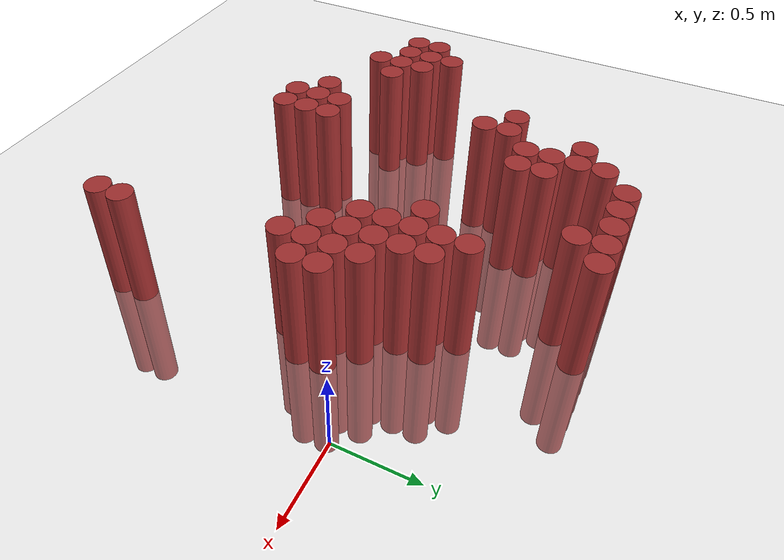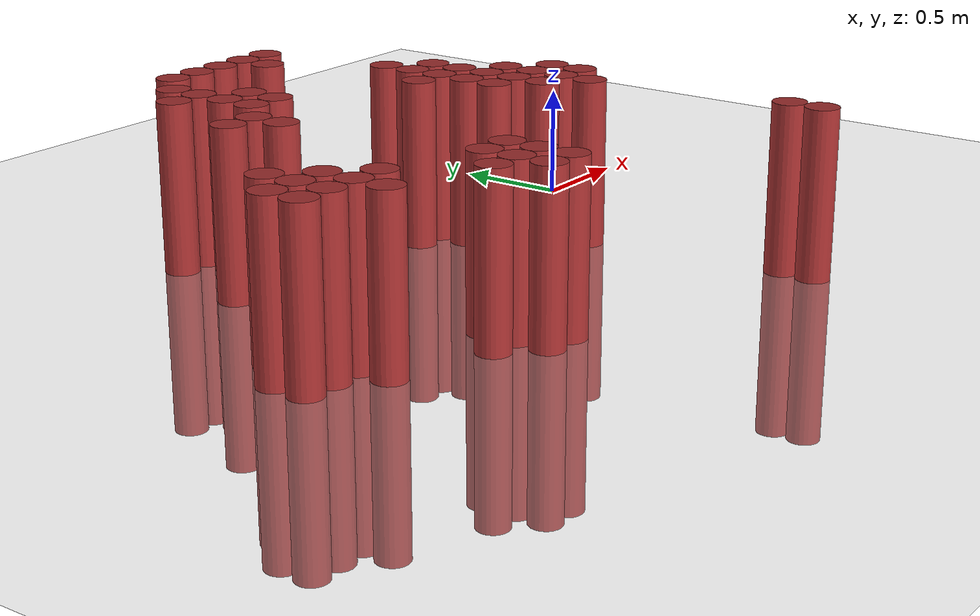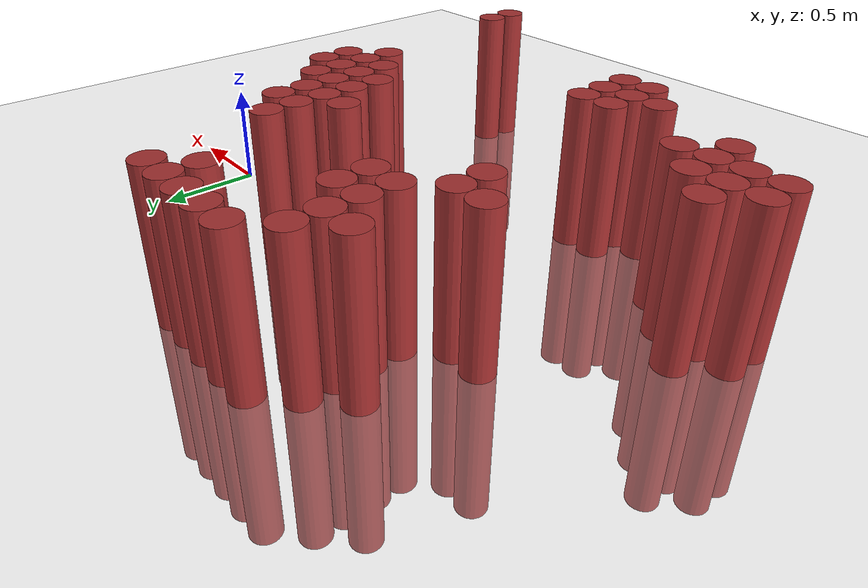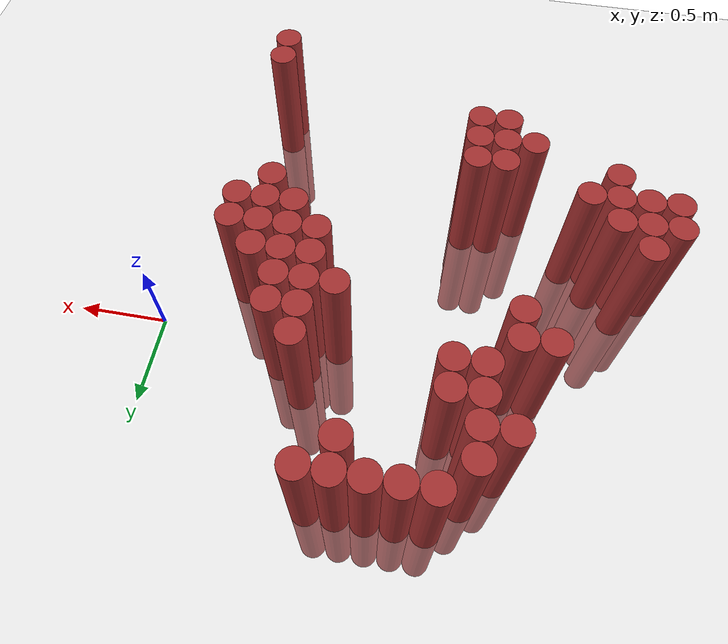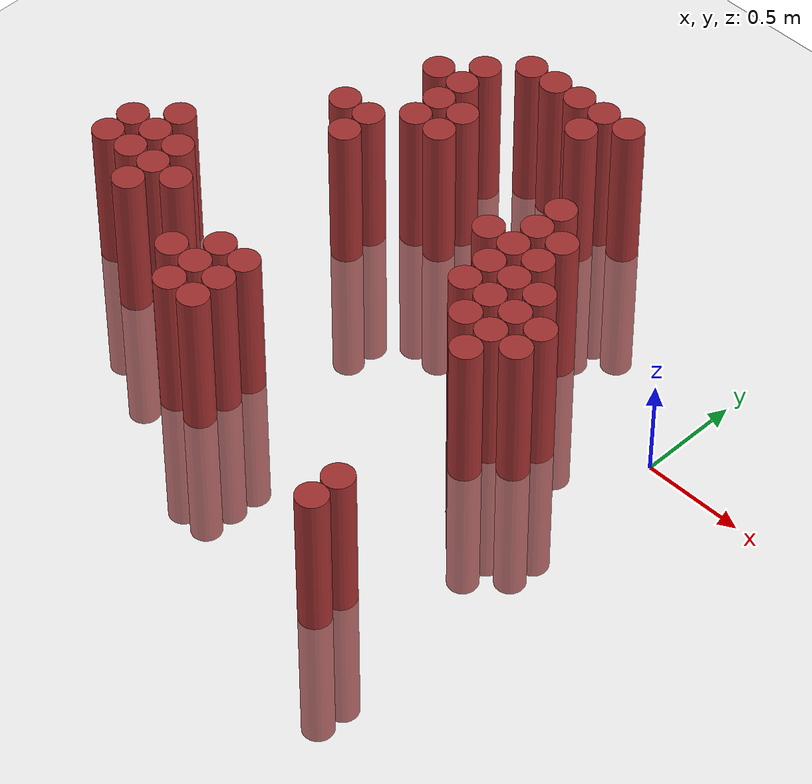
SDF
<sdf version="1.6">
 <world name="default">
  <model name="ground_plane">
   <static>1</static>
   <link name="link">
    <collision name="collision">
     <geometry><plane><normal>0 0 1</normal><size>100 100</size></plane></geometry>
     <surface><friction><ode><mu>100</mu><mu2>50</mu2></ode></friction></surface>
    </collision>
    <visual name="visual">
     <cast_shadows>0</cast_shadows>
     <geometry><plane><normal>0 0 1</normal><size>100 100</size></plane></geometry>
     <material>
      <script><uri>file://media/materials/scripts/gazebo.material</uri><name>Gazebo/Grey</name></script>
     </material>
    </visual>
   </link>
  </model>
  <model name="unit_cylinder_311">
   <static>1</static>
   <pose>-2.675000 -0.725000 0.000000 0.000000 0.000000 0.000000</pose>
   <link name="link">
    <inertial>
     <mass>1</mass>
     <inertia><ixx>0.145833</ixx><ixy>0</ixy><ixz>0</ixz><iyy>0.145833</iyy><iyz>0</iyz><izz>0.125</izz></inertia>
    </inertial>
    <collision name="collision">
     <geometry><cylinder><radius>0.075000</radius><length>1.5</length></cylinder></geometry>
    </collision>
    <visual name="visual">
     <geometry><cylinder><radius>0.075000</radius><length>1.5</length></cylinder></geometry>
     <material>
      <ambient>0.648000 0.192000 0.192000 1</ambient>
      <diffuse>0.648000 0.192000 0.192000 1</diffuse>
     </material>
     <material>
      <script><name>Gazebo/Grey</name><uri>file://media/materials/scripts/gazebo.material</uri></script>
     </material>
    </visual>
   </link>
  </model>
  <model name="unit_cylinder_312">
   <static>1</static>
   <pose>-2.675000 -0.575000 0.000000 0.000000 0.000000 0.000000</pose>
   <link name="link">
    <inertial>
     <mass>1</mass>
     <inertia><ixx>0.145833</ixx><ixy>0</ixy><ixz>0</ixz><iyy>0.145833</iyy><iyz>0</iyz><izz>0.125</izz></inertia>
    </inertial>
    <collision name="collision">
     <geometry><cylinder><radius>0.075000</radius><length>1.5</length></cylinder></geometry>
    </collision>
    <visual name="visual">
     <geometry><cylinder><radius>0.075000</radius><length>1.5</length></cylinder></geometry>
     <material>
      <ambient>0.648000 0.192000 0.192000 1</ambient>
      <diffuse>0.648000 0.192000 0.192000 1</diffuse>
     </material>
     <material>
      <script><name>Gazebo/Grey</name><uri>file://media/materials/scripts/gazebo.material</uri></script>
     </material>
    </visual>
   </link>
  </model>
  <model name="unit_cylinder_316">
   <static>1</static>
   <pose>-2.525000 -0.725000 0.000000 0.000000 0.000000 0.000000</pose>
   <link name="link">
    <inertial>
     <mass>1</mass>
     <inertia><ixx>0.145833</ixx><ixy>0</ixy><ixz>0</ixz><iyy>0.145833</iyy><iyz>0</iyz><izz>0.125</izz></inertia>
    </inertial>
    <collision name="collision">
     <geometry><cylinder><radius>0.075000</radius><length>1.5</length></cylinder></geometry>
    </collision>
    <visual name="visual">
     <geometry><cylinder><radius>0.075000</radius><length>1.5</length></cylinder></geometry>
     <material>
      <ambient>0.648000 0.192000 0.192000 1</ambient>
      <diffuse>0.648000 0.192000 0.192000 1</diffuse>
     </material>
     <material>
      <script><name>Gazebo/Grey</name><uri>file://media/materials/scripts/gazebo.material</uri></script>
     </material>
    </visual>
   </link>
  </model>
  <model name="unit_cylinder_317">
   <static>1</static>
   <pose>-2.525000 -0.575000 0.000000 0.000000 0.000000 0.000000</pose>
   <link name="link">
    <inertial>
     <mass>1</mass>
     <inertia><ixx>0.145833</ixx><ixy>0</ixy><ixz>0</ixz><iyy>0.145833</iyy><iyz>0</iyz><izz>0.125</izz></inertia>
    </inertial>
    <collision name="collision">
     <geometry><cylinder><radius>0.075000</radius><length>1.5</length></cylinder></geometry>
    </collision>
    <visual name="visual">
     <geometry><cylinder><radius>0.075000</radius><length>1.5</length></cylinder></geometry>
     <material>
      <ambient>0.648000 0.192000 0.192000 1</ambient>
      <diffuse>0.648000 0.192000 0.192000 1</diffuse>
     </material>
     <material>
      <script><name>Gazebo/Grey</name><uri>file://media/materials/scripts/gazebo.material</uri></script>
     </material>
    </visual>
   </link>
  </model>
  <model name="unit_cylinder_318">
   <static>1</static>
   <pose>-2.525000 -0.425000 0.000000 0.000000 0.000000 0.000000</pose>
   <link name="link">
    <inertial>
     <mass>1</mass>
     <inertia><ixx>0.145833</ixx><ixy>0</ixy><ixz>0</ixz><iyy>0.145833</iyy><iyz>0</iyz><izz>0.125</izz></inertia>
    </inertial>
    <collision name="collision">
     <geometry><cylinder><radius>0.075000</radius><length>1.5</length></cylinder></geometry>
    </collision>
    <visual name="visual">
     <geometry><cylinder><radius>0.075000</radius><length>1.5</length></cylinder></geometry>
     <material>
      <ambient>0.648000 0.192000 0.192000 1</ambient>
      <diffuse>0.648000 0.192000 0.192000 1</diffuse>
     </material>
     <material>
      <script><name>Gazebo/Grey</name><uri>file://media/materials/scripts/gazebo.material</uri></script>
     </material>
    </visual>
   </link>
  </model>
  <model name="unit_cylinder_322">
   <static>1</static>
   <pose>-2.375000 -0.875000 0.000000 0.000000 0.000000 0.000000</pose>
   <link name="link">
    <inertial>
     <mass>1</mass>
     <inertia><ixx>0.145833</ixx><ixy>0</ixy><ixz>0</ixz><iyy>0.145833</iyy><iyz>0</iyz><izz>0.125</izz></inertia>
    </inertial>
    <collision name="collision">
     <geometry><cylinder><radius>0.075000</radius><length>1.5</length></cylinder></geometry>
    </collision>
    <visual name="visual">
     <geometry><cylinder><radius>0.075000</radius><length>1.5</length></cylinder></geometry>
     <material>
      <ambient>0.648000 0.192000 0.192000 1</ambient>
      <diffuse>0.648000 0.192000 0.192000 1</diffuse>
     </material>
     <material>
      <script><name>Gazebo/Grey</name><uri>file://media/materials/scripts/gazebo.material</uri></script>
     </material>
    </visual>
   </link>
  </model>
  <model name="unit_cylinder_323">
   <static>1</static>
   <pose>-2.375000 -0.725000 0.000000 0.000000 0.000000 0.000000</pose>
   <link name="link">
    <inertial>
     <mass>1</mass>
     <inertia><ixx>0.145833</ixx><ixy>0</ixy><ixz>0</ixz><iyy>0.145833</iyy><iyz>0</iyz><izz>0.125</izz></inertia>
    </inertial>
    <collision name="collision">
     <geometry><cylinder><radius>0.075000</radius><length>1.5</length></cylinder></geometry>
    </collision>
    <visual name="visual">
     <geometry><cylinder><radius>0.075000</radius><length>1.5</length></cylinder></geometry>
     <material>
      <ambient>0.648000 0.192000 0.192000 1</ambient>
      <diffuse>0.648000 0.192000 0.192000 1</diffuse>
     </material>
     <material>
      <script><name>Gazebo/Grey</name><uri>file://media/materials/scripts/gazebo.material</uri></script>
     </material>
    </visual>
   </link>
  </model>
  <model name="unit_cylinder_324">
   <static>1</static>
   <pose>-2.375000 -0.575000 0.000000 0.000000 0.000000 0.000000</pose>
   <link name="link">
    <inertial>
     <mass>1</mass>
     <inertia><ixx>0.145833</ixx><ixy>0</ixy><ixz>0</ixz><iyy>0.145833</iyy><iyz>0</iyz><izz>0.125</izz></inertia>
    </inertial>
    <collision name="collision">
     <geometry><cylinder><radius>0.075000</radius><length>1.5</length></cylinder></geometry>
    </collision>
    <visual name="visual">
     <geometry><cylinder><radius>0.075000</radius><length>1.5</length></cylinder></geometry>
     <material>
      <ambient>0.648000 0.192000 0.192000 1</ambient>
      <diffuse>0.648000 0.192000 0.192000 1</diffuse>
     </material>
     <material>
      <script><name>Gazebo/Grey</name><uri>file://media/materials/scripts/gazebo.material</uri></script>
     </material>
    </visual>
   </link>
  </model>
  <model name="unit_cylinder_333">
   <static>1</static>
   <pose>-2.225000 -0.725000 0.000000 0.000000 0.000000 0.000000</pose>
   <link name="link">
    <inertial>
     <mass>1</mass>
     <inertia><ixx>0.145833</ixx><ixy>0</ixy><ixz>0</ixz><iyy>0.145833</iyy><iyz>0</iyz><izz>0.125</izz></inertia>
    </inertial>
    <collision name="collision">
     <geometry><cylinder><radius>0.075000</radius><length>1.5</length></cylinder></geometry>
    </collision>
    <visual name="visual">
     <geometry><cylinder><radius>0.075000</radius><length>1.5</length></cylinder></geometry>
     <material>
      <ambient>0.648000 0.192000 0.192000 1</ambient>
      <diffuse>0.648000 0.192000 0.192000 1</diffuse>
     </material>
     <material>
      <script><name>Gazebo/Grey</name><uri>file://media/materials/scripts/gazebo.material</uri></script>
     </material>
    </visual>
   </link>
  </model>
  <model name="unit_cylinder_341">
   <static>1</static>
   <pose>-2.075000 0.175000 0.000000 0.000000 0.000000 0.000000</pose>
   <link name="link">
    <inertial>
     <mass>1</mass>
     <inertia><ixx>0.145833</ixx><ixy>0</ixy><ixz>0</ixz><iyy>0.145833</iyy><iyz>0</iyz><izz>0.125</izz></inertia>
    </inertial>
    <collision name="collision">
     <geometry><cylinder><radius>0.075000</radius><length>1.5</length></cylinder></geometry>
    </collision>
    <visual name="visual">
     <geometry><cylinder><radius>0.075000</radius><length>1.5</length></cylinder></geometry>
     <material>
      <ambient>0.648000 0.192000 0.192000 1</ambient>
      <diffuse>0.648000 0.192000 0.192000 1</diffuse>
     </material>
     <material>
      <script><name>Gazebo/Grey</name><uri>file://media/materials/scripts/gazebo.material</uri></script>
     </material>
    </visual>
   </link>
  </model>
  <model name="unit_cylinder_346">
   <static>1</static>
   <pose>-1.925000 -1.025000 0.000000 0.000000 0.000000 0.000000</pose>
   <link name="link">
    <inertial>
     <mass>1</mass>
     <inertia><ixx>0.145833</ixx><ixy>0</ixy><ixz>0</ixz><iyy>0.145833</iyy><iyz>0</iyz><izz>0.125</izz></inertia>
    </inertial>
    <collision name="collision">
     <geometry><cylinder><radius>0.075000</radius><length>1.5</length></cylinder></geometry>
    </collision>
    <visual name="visual">
     <geometry><cylinder><radius>0.075000</radius><length>1.5</length></cylinder></geometry>
     <material>
      <ambient>0.648000 0.192000 0.192000 1</ambient>
      <diffuse>0.648000 0.192000 0.192000 1</diffuse>
     </material>
     <material>
      <script><name>Gazebo/Grey</name><uri>file://media/materials/scripts/gazebo.material</uri></script>
     </material>
    </visual>
   </link>
  </model>
  <model name="unit_cylinder_347">
   <static>1</static>
   <pose>-1.925000 0.025000 0.000000 0.000000 0.000000 0.000000</pose>
   <link name="link">
    <inertial>
     <mass>1</mass>
     <inertia><ixx>0.145833</ixx><ixy>0</ixy><ixz>0</ixz><iyy>0.145833</iyy><iyz>0</iyz><izz>0.125</izz></inertia>
    </inertial>
    <collision name="collision">
     <geometry><cylinder><radius>0.075000</radius><length>1.5</length></cylinder></geometry>
    </collision>
    <visual name="visual">
     <geometry><cylinder><radius>0.075000</radius><length>1.5</length></cylinder></geometry>
     <material>
      <ambient>0.648000 0.192000 0.192000 1</ambient>
      <diffuse>0.648000 0.192000 0.192000 1</diffuse>
     </material>
     <material>
      <script><name>Gazebo/Grey</name><uri>file://media/materials/scripts/gazebo.material</uri></script>
     </material>
    </visual>
   </link>
  </model>
  <model name="unit_cylinder_348">
   <static>1</static>
   <pose>-1.925000 0.175000 0.000000 0.000000 0.000000 0.000000</pose>
   <link name="link">
    <inertial>
     <mass>1</mass>
     <inertia><ixx>0.145833</ixx><ixy>0</ixy><ixz>0</ixz><iyy>0.145833</iyy><iyz>0</iyz><izz>0.125</izz></inertia>
    </inertial>
    <collision name="collision">
     <geometry><cylinder><radius>0.075000</radius><length>1.5</length></cylinder></geometry>
    </collision>
    <visual name="visual">
     <geometry><cylinder><radius>0.075000</radius><length>1.5</length></cylinder></geometry>
     <material>
      <ambient>0.648000 0.192000 0.192000 1</ambient>
      <diffuse>0.648000 0.192000 0.192000 1</diffuse>
     </material>
     <material>
      <script><name>Gazebo/Grey</name><uri>file://media/materials/scripts/gazebo.material</uri></script>
     </material>
    </visual>
   </link>
  </model>
  <model name="unit_cylinder_349">
   <static>1</static>
   <pose>-1.925000 0.625000 0.000000 0.000000 0.000000 0.000000</pose>
   <link name="link">
    <inertial>
     <mass>1</mass>
     <inertia><ixx>0.145833</ixx><ixy>0</ixy><ixz>0</ixz><iyy>0.145833</iyy><iyz>0</iyz><izz>0.125</izz></inertia>
    </inertial>
    <collision name="collision">
     <geometry><cylinder><radius>0.075000</radius><length>1.5</length></cylinder></geometry>
    </collision>
    <visual name="visual">
     <geometry><cylinder><radius>0.075000</radius><length>1.5</length></cylinder></geometry>
     <material>
      <ambient>0.648000 0.192000 0.192000 1</ambient>
      <diffuse>0.648000 0.192000 0.192000 1</diffuse>
     </material>
     <material>
      <script><name>Gazebo/Grey</name><uri>file://media/materials/scripts/gazebo.material</uri></script>
     </material>
    </visual>
   </link>
  </model>
  <model name="unit_cylinder_354">
   <static>1</static>
   <pose>-1.775000 -1.175000 0.000000 0.000000 0.000000 0.000000</pose>
   <link name="link">
    <inertial>
     <mass>1</mass>
     <inertia><ixx>0.145833</ixx><ixy>0</ixy><ixz>0</ixz><iyy>0.145833</iyy><iyz>0</iyz><izz>0.125</izz></inertia>
    </inertial>
    <collision name="collision">
     <geometry><cylinder><radius>0.075000</radius><length>1.5</length></cylinder></geometry>
    </collision>
    <visual name="visual">
     <geometry><cylinder><radius>0.075000</radius><length>1.5</length></cylinder></geometry>
     <material>
      <ambient>0.648000 0.192000 0.192000 1</ambient>
      <diffuse>0.648000 0.192000 0.192000 1</diffuse>
     </material>
     <material>
      <script><name>Gazebo/Grey</name><uri>file://media/materials/scripts/gazebo.material</uri></script>
     </material>
    </visual>
   </link>
  </model>
  <model name="unit_cylinder_355">
   <static>1</static>
   <pose>-1.775000 -1.025000 0.000000 0.000000 0.000000 0.000000</pose>
   <link name="link">
    <inertial>
     <mass>1</mass>
     <inertia><ixx>0.145833</ixx><ixy>0</ixy><ixz>0</ixz><iyy>0.145833</iyy><iyz>0</iyz><izz>0.125</izz></inertia>
    </inertial>
    <collision name="collision">
     <geometry><cylinder><radius>0.075000</radius><length>1.5</length></cylinder></geometry>
    </collision>
    <visual name="visual">
     <geometry><cylinder><radius>0.075000</radius><length>1.5</length></cylinder></geometry>
     <material>
      <ambient>0.648000 0.192000 0.192000 1</ambient>
      <diffuse>0.648000 0.192000 0.192000 1</diffuse>
     </material>
     <material>
      <script><name>Gazebo/Grey</name><uri>file://media/materials/scripts/gazebo.material</uri></script>
     </material>
    </visual>
   </link>
  </model>
  <model name="unit_cylinder_356">
   <static>1</static>
   <pose>-1.775000 -0.875000 0.000000 0.000000 0.000000 0.000000</pose>
   <link name="link">
    <inertial>
     <mass>1</mass>
     <inertia><ixx>0.145833</ixx><ixy>0</ixy><ixz>0</ixz><iyy>0.145833</iyy><iyz>0</iyz><izz>0.125</izz></inertia>
    </inertial>
    <collision name="collision">
     <geometry><cylinder><radius>0.075000</radius><length>1.5</length></cylinder></geometry>
    </collision>
    <visual name="visual">
     <geometry><cylinder><radius>0.075000</radius><length>1.5</length></cylinder></geometry>
     <material>
      <ambient>0.648000 0.192000 0.192000 1</ambient>
      <diffuse>0.648000 0.192000 0.192000 1</diffuse>
     </material>
     <material>
      <script><name>Gazebo/Grey</name><uri>file://media/materials/scripts/gazebo.material</uri></script>
     </material>
    </visual>
   </link>
  </model>
  <model name="unit_cylinder_357">
   <static>1</static>
   <pose>-1.775000 0.325000 0.000000 0.000000 0.000000 0.000000</pose>
   <link name="link">
    <inertial>
     <mass>1</mass>
     <inertia><ixx>0.145833</ixx><ixy>0</ixy><ixz>0</ixz><iyy>0.145833</iyy><iyz>0</iyz><izz>0.125</izz></inertia>
    </inertial>
    <collision name="collision">
     <geometry><cylinder><radius>0.075000</radius><length>1.5</length></cylinder></geometry>
    </collision>
    <visual name="visual">
     <geometry><cylinder><radius>0.075000</radius><length>1.5</length></cylinder></geometry>
     <material>
      <ambient>0.648000 0.192000 0.192000 1</ambient>
      <diffuse>0.648000 0.192000 0.192000 1</diffuse>
     </material>
     <material>
      <script><name>Gazebo/Grey</name><uri>file://media/materials/scripts/gazebo.material</uri></script>
     </material>
    </visual>
   </link>
  </model>
  <model name="unit_cylinder_358">
   <static>1</static>
   <pose>-1.775000 0.475000 0.000000 0.000000 0.000000 0.000000</pose>
   <link name="link">
    <inertial>
     <mass>1</mass>
     <inertia><ixx>0.145833</ixx><ixy>0</ixy><ixz>0</ixz><iyy>0.145833</iyy><iyz>0</iyz><izz>0.125</izz></inertia>
    </inertial>
    <collision name="collision">
     <geometry><cylinder><radius>0.075000</radius><length>1.5</length></cylinder></geometry>
    </collision>
    <visual name="visual">
     <geometry><cylinder><radius>0.075000</radius><length>1.5</length></cylinder></geometry>
     <material>
      <ambient>0.648000 0.192000 0.192000 1</ambient>
      <diffuse>0.648000 0.192000 0.192000 1</diffuse>
     </material>
     <material>
      <script><name>Gazebo/Grey</name><uri>file://media/materials/scripts/gazebo.material</uri></script>
     </material>
    </visual>
   </link>
  </model>
  <model name="unit_cylinder_359">
   <static>1</static>
   <pose>-1.775000 0.625000 0.000000 0.000000 0.000000 0.000000</pose>
   <link name="link">
    <inertial>
     <mass>1</mass>
     <inertia><ixx>0.145833</ixx><ixy>0</ixy><ixz>0</ixz><iyy>0.145833</iyy><iyz>0</iyz><izz>0.125</izz></inertia>
    </inertial>
    <collision name="collision">
     <geometry><cylinder><radius>0.075000</radius><length>1.5</length></cylinder></geometry>
    </collision>
    <visual name="visual">
     <geometry><cylinder><radius>0.075000</radius><length>1.5</length></cylinder></geometry>
     <material>
      <ambient>0.648000 0.192000 0.192000 1</ambient>
      <diffuse>0.648000 0.192000 0.192000 1</diffuse>
     </material>
     <material>
      <script><name>Gazebo/Grey</name><uri>file://media/materials/scripts/gazebo.material</uri></script>
     </material>
    </visual>
   </link>
  </model>
  <model name="unit_cylinder_360">
   <static>1</static>
   <pose>-1.775000 0.775000 0.000000 0.000000 0.000000 0.000000</pose>
   <link name="link">
    <inertial>
     <mass>1</mass>
     <inertia><ixx>0.145833</ixx><ixy>0</ixy><ixz>0</ixz><iyy>0.145833</iyy><iyz>0</iyz><izz>0.125</izz></inertia>
    </inertial>
    <collision name="collision">
     <geometry><cylinder><radius>0.075000</radius><length>1.5</length></cylinder></geometry>
    </collision>
    <visual name="visual">
     <geometry><cylinder><radius>0.075000</radius><length>1.5</length></cylinder></geometry>
     <material>
      <ambient>0.648000 0.192000 0.192000 1</ambient>
      <diffuse>0.648000 0.192000 0.192000 1</diffuse>
     </material>
     <material>
      <script><name>Gazebo/Grey</name><uri>file://media/materials/scripts/gazebo.material</uri></script>
     </material>
    </visual>
   </link>
  </model>
  <model name="unit_cylinder_367">
   <static>1</static>
   <pose>-1.625000 -1.175000 0.000000 0.000000 0.000000 0.000000</pose>
   <link name="link">
    <inertial>
     <mass>1</mass>
     <inertia><ixx>0.145833</ixx><ixy>0</ixy><ixz>0</ixz><iyy>0.145833</iyy><iyz>0</iyz><izz>0.125</izz></inertia>
    </inertial>
    <collision name="collision">
     <geometry><cylinder><radius>0.075000</radius><length>1.5</length></cylinder></geometry>
    </collision>
    <visual name="visual">
     <geometry><cylinder><radius>0.075000</radius><length>1.5</length></cylinder></geometry>
     <material>
      <ambient>0.648000 0.192000 0.192000 1</ambient>
      <diffuse>0.648000 0.192000 0.192000 1</diffuse>
     </material>
     <material>
      <script><name>Gazebo/Grey</name><uri>file://media/materials/scripts/gazebo.material</uri></script>
     </material>
    </visual>
   </link>
  </model>
  <model name="unit_cylinder_368">
   <static>1</static>
   <pose>-1.625000 -1.025000 0.000000 0.000000 0.000000 0.000000</pose>
   <link name="link">
    <inertial>
     <mass>1</mass>
     <inertia><ixx>0.145833</ixx><ixy>0</ixy><ixz>0</ixz><iyy>0.145833</iyy><iyz>0</iyz><izz>0.125</izz></inertia>
    </inertial>
    <collision name="collision">
     <geometry><cylinder><radius>0.075000</radius><length>1.5</length></cylinder></geometry>
    </collision>
    <visual name="visual">
     <geometry><cylinder><radius>0.075000</radius><length>1.5</length></cylinder></geometry>
     <material>
      <ambient>0.648000 0.192000 0.192000 1</ambient>
      <diffuse>0.648000 0.192000 0.192000 1</diffuse>
     </material>
     <material>
      <script><name>Gazebo/Grey</name><uri>file://media/materials/scripts/gazebo.material</uri></script>
     </material>
    </visual>
   </link>
  </model>
  <model name="unit_cylinder_369">
   <static>1</static>
   <pose>-1.625000 -0.875000 0.000000 0.000000 0.000000 0.000000</pose>
   <link name="link">
    <inertial>
     <mass>1</mass>
     <inertia><ixx>0.145833</ixx><ixy>0</ixy><ixz>0</ixz><iyy>0.145833</iyy><iyz>0</iyz><izz>0.125</izz></inertia>
    </inertial>
    <collision name="collision">
     <geometry><cylinder><radius>0.075000</radius><length>1.5</length></cylinder></geometry>
    </collision>
    <visual name="visual">
     <geometry><cylinder><radius>0.075000</radius><length>1.5</length></cylinder></geometry>
     <material>
      <ambient>0.648000 0.192000 0.192000 1</ambient>
      <diffuse>0.648000 0.192000 0.192000 1</diffuse>
     </material>
     <material>
      <script><name>Gazebo/Grey</name><uri>file://media/materials/scripts/gazebo.material</uri></script>
     </material>
    </visual>
   </link>
  </model>
  <model name="unit_cylinder_370">
   <static>1</static>
   <pose>-1.625000 0.325000 0.000000 0.000000 0.000000 0.000000</pose>
   <link name="link">
    <inertial>
     <mass>1</mass>
     <inertia><ixx>0.145833</ixx><ixy>0</ixy><ixz>0</ixz><iyy>0.145833</iyy><iyz>0</iyz><izz>0.125</izz></inertia>
    </inertial>
    <collision name="collision">
     <geometry><cylinder><radius>0.075000</radius><length>1.5</length></cylinder></geometry>
    </collision>
    <visual name="visual">
     <geometry><cylinder><radius>0.075000</radius><length>1.5</length></cylinder></geometry>
     <material>
      <ambient>0.648000 0.192000 0.192000 1</ambient>
      <diffuse>0.648000 0.192000 0.192000 1</diffuse>
     </material>
     <material>
      <script><name>Gazebo/Grey</name><uri>file://media/materials/scripts/gazebo.material</uri></script>
     </material>
    </visual>
   </link>
  </model>
  <model name="unit_cylinder_371">
   <static>1</static>
   <pose>-1.625000 0.475000 0.000000 0.000000 0.000000 0.000000</pose>
   <link name="link">
    <inertial>
     <mass>1</mass>
     <inertia><ixx>0.145833</ixx><ixy>0</ixy><ixz>0</ixz><iyy>0.145833</iyy><iyz>0</iyz><izz>0.125</izz></inertia>
    </inertial>
    <collision name="collision">
     <geometry><cylinder><radius>0.075000</radius><length>1.5</length></cylinder></geometry>
    </collision>
    <visual name="visual">
     <geometry><cylinder><radius>0.075000</radius><length>1.5</length></cylinder></geometry>
     <material>
      <ambient>0.648000 0.192000 0.192000 1</ambient>
      <diffuse>0.648000 0.192000 0.192000 1</diffuse>
     </material>
     <material>
      <script><name>Gazebo/Grey</name><uri>file://media/materials/scripts/gazebo.material</uri></script>
     </material>
    </visual>
   </link>
  </model>
  <model name="unit_cylinder_372">
   <static>1</static>
   <pose>-1.625000 0.925000 0.000000 0.000000 0.000000 0.000000</pose>
   <link name="link">
    <inertial>
     <mass>1</mass>
     <inertia><ixx>0.145833</ixx><ixy>0</ixy><ixz>0</ixz><iyy>0.145833</iyy><iyz>0</iyz><izz>0.125</izz></inertia>
    </inertial>
    <collision name="collision">
     <geometry><cylinder><radius>0.075000</radius><length>1.5</length></cylinder></geometry>
    </collision>
    <visual name="visual">
     <geometry><cylinder><radius>0.075000</radius><length>1.5</length></cylinder></geometry>
     <material>
      <ambient>0.648000 0.192000 0.192000 1</ambient>
      <diffuse>0.648000 0.192000 0.192000 1</diffuse>
     </material>
     <material>
      <script><name>Gazebo/Grey</name><uri>file://media/materials/scripts/gazebo.material</uri></script>
     </material>
    </visual>
   </link>
  </model>
  <model name="unit_cylinder_378">
   <static>1</static>
   <pose>-1.475000 0.925000 0.000000 0.000000 0.000000 0.000000</pose>
   <link name="link">
    <inertial>
     <mass>1</mass>
     <inertia><ixx>0.145833</ixx><ixy>0</ixy><ixz>0</ixz><iyy>0.145833</iyy><iyz>0</iyz><izz>0.125</izz></inertia>
    </inertial>
    <collision name="collision">
     <geometry><cylinder><radius>0.075000</radius><length>1.5</length></cylinder></geometry>
    </collision>
    <visual name="visual">
     <geometry><cylinder><radius>0.075000</radius><length>1.5</length></cylinder></geometry>
     <material>
      <ambient>0.648000 0.192000 0.192000 1</ambient>
      <diffuse>0.648000 0.192000 0.192000 1</diffuse>
     </material>
     <material>
      <script><name>Gazebo/Grey</name><uri>file://media/materials/scripts/gazebo.material</uri></script>
     </material>
    </visual>
   </link>
  </model>
  <model name="unit_cylinder_386">
   <static>1</static>
   <pose>-1.325000 0.925000 0.000000 0.000000 0.000000 0.000000</pose>
   <link name="link">
    <inertial>
     <mass>1</mass>
     <inertia><ixx>0.145833</ixx><ixy>0</ixy><ixz>0</ixz><iyy>0.145833</iyy><iyz>0</iyz><izz>0.125</izz></inertia>
    </inertial>
    <collision name="collision">
     <geometry><cylinder><radius>0.075000</radius><length>1.5</length></cylinder></geometry>
    </collision>
    <visual name="visual">
     <geometry><cylinder><radius>0.075000</radius><length>1.5</length></cylinder></geometry>
     <material>
      <ambient>0.648000 0.192000 0.192000 1</ambient>
      <diffuse>0.648000 0.192000 0.192000 1</diffuse>
     </material>
     <material>
      <script><name>Gazebo/Grey</name><uri>file://media/materials/scripts/gazebo.material</uri></script>
     </material>
    </visual>
   </link>
  </model>
  <model name="unit_cylinder_391">
   <static>1</static>
   <pose>-1.175000 0.775000 0.000000 0.000000 0.000000 0.000000</pose>
   <link name="link">
    <inertial>
     <mass>1</mass>
     <inertia><ixx>0.145833</ixx><ixy>0</ixy><ixz>0</ixz><iyy>0.145833</iyy><iyz>0</iyz><izz>0.125</izz></inertia>
    </inertial>
    <collision name="collision">
     <geometry><cylinder><radius>0.075000</radius><length>1.5</length></cylinder></geometry>
    </collision>
    <visual name="visual">
     <geometry><cylinder><radius>0.075000</radius><length>1.5</length></cylinder></geometry>
     <material>
      <ambient>0.648000 0.192000 0.192000 1</ambient>
      <diffuse>0.648000 0.192000 0.192000 1</diffuse>
     </material>
     <material>
      <script><name>Gazebo/Grey</name><uri>file://media/materials/scripts/gazebo.material</uri></script>
     </material>
    </visual>
   </link>
  </model>
  <model name="unit_cylinder_392">
   <static>1</static>
   <pose>-1.175000 0.925000 0.000000 0.000000 0.000000 0.000000</pose>
   <link name="link">
    <inertial>
     <mass>1</mass>
     <inertia><ixx>0.145833</ixx><ixy>0</ixy><ixz>0</ixz><iyy>0.145833</iyy><iyz>0</iyz><izz>0.125</izz></inertia>
    </inertial>
    <collision name="collision">
     <geometry><cylinder><radius>0.075000</radius><length>1.5</length></cylinder></geometry>
    </collision>
    <visual name="visual">
     <geometry><cylinder><radius>0.075000</radius><length>1.5</length></cylinder></geometry>
     <material>
      <ambient>0.648000 0.192000 0.192000 1</ambient>
      <diffuse>0.648000 0.192000 0.192000 1</diffuse>
     </material>
     <material>
      <script><name>Gazebo/Grey</name><uri>file://media/materials/scripts/gazebo.material</uri></script>
     </material>
    </visual>
   </link>
  </model>
  <model name="unit_cylinder_396">
   <static>1</static>
   <pose>-1.025000 0.025000 0.000000 0.000000 0.000000 0.000000</pose>
   <link name="link">
    <inertial>
     <mass>1</mass>
     <inertia><ixx>0.145833</ixx><ixy>0</ixy><ixz>0</ixz><iyy>0.145833</iyy><iyz>0</iyz><izz>0.125</izz></inertia>
    </inertial>
    <collision name="collision">
     <geometry><cylinder><radius>0.075000</radius><length>1.5</length></cylinder></geometry>
    </collision>
    <visual name="visual">
     <geometry><cylinder><radius>0.075000</radius><length>1.5</length></cylinder></geometry>
     <material>
      <ambient>0.648000 0.192000 0.192000 1</ambient>
      <diffuse>0.648000 0.192000 0.192000 1</diffuse>
     </material>
     <material>
      <script><name>Gazebo/Grey</name><uri>file://media/materials/scripts/gazebo.material</uri></script>
     </material>
    </visual>
   </link>
  </model>
  <model name="unit_cylinder_397">
   <static>1</static>
   <pose>-1.025000 0.925000 0.000000 0.000000 0.000000 0.000000</pose>
   <link name="link">
    <inertial>
     <mass>1</mass>
     <inertia><ixx>0.145833</ixx><ixy>0</ixy><ixz>0</ixz><iyy>0.145833</iyy><iyz>0</iyz><izz>0.125</izz></inertia>
    </inertial>
    <collision name="collision">
     <geometry><cylinder><radius>0.075000</radius><length>1.5</length></cylinder></geometry>
    </collision>
    <visual name="visual">
     <geometry><cylinder><radius>0.075000</radius><length>1.5</length></cylinder></geometry>
     <material>
      <ambient>0.648000 0.192000 0.192000 1</ambient>
      <diffuse>0.648000 0.192000 0.192000 1</diffuse>
     </material>
     <material>
      <script><name>Gazebo/Grey</name><uri>file://media/materials/scripts/gazebo.material</uri></script>
     </material>
    </visual>
   </link>
  </model>
  <model name="unit_cylinder_400">
   <static>1</static>
   <pose>-0.875000 -0.275000 0.000000 0.000000 0.000000 0.000000</pose>
   <link name="link">
    <inertial>
     <mass>1</mass>
     <inertia><ixx>0.145833</ixx><ixy>0</ixy><ixz>0</ixz><iyy>0.145833</iyy><iyz>0</iyz><izz>0.125</izz></inertia>
    </inertial>
    <collision name="collision">
     <geometry><cylinder><radius>0.075000</radius><length>1.5</length></cylinder></geometry>
    </collision>
    <visual name="visual">
     <geometry><cylinder><radius>0.075000</radius><length>1.5</length></cylinder></geometry>
     <material>
      <ambient>0.648000 0.192000 0.192000 1</ambient>
      <diffuse>0.648000 0.192000 0.192000 1</diffuse>
     </material>
     <material>
      <script><name>Gazebo/Grey</name><uri>file://media/materials/scripts/gazebo.material</uri></script>
     </material>
    </visual>
   </link>
  </model>
  <model name="unit_cylinder_401">
   <static>1</static>
   <pose>-0.875000 -0.125000 0.000000 0.000000 0.000000 0.000000</pose>
   <link name="link">
    <inertial>
     <mass>1</mass>
     <inertia><ixx>0.145833</ixx><ixy>0</ixy><ixz>0</ixz><iyy>0.145833</iyy><iyz>0</iyz><izz>0.125</izz></inertia>
    </inertial>
    <collision name="collision">
     <geometry><cylinder><radius>0.075000</radius><length>1.5</length></cylinder></geometry>
    </collision>
    <visual name="visual">
     <geometry><cylinder><radius>0.075000</radius><length>1.5</length></cylinder></geometry>
     <material>
      <ambient>0.648000 0.192000 0.192000 1</ambient>
      <diffuse>0.648000 0.192000 0.192000 1</diffuse>
     </material>
     <material>
      <script><name>Gazebo/Grey</name><uri>file://media/materials/scripts/gazebo.material</uri></script>
     </material>
    </visual>
   </link>
  </model>
  <model name="unit_cylinder_402">
   <static>1</static>
   <pose>-0.875000 0.025000 0.000000 0.000000 0.000000 0.000000</pose>
   <link name="link">
    <inertial>
     <mass>1</mass>
     <inertia><ixx>0.145833</ixx><ixy>0</ixy><ixz>0</ixz><iyy>0.145833</iyy><iyz>0</iyz><izz>0.125</izz></inertia>
    </inertial>
    <collision name="collision">
     <geometry><cylinder><radius>0.075000</radius><length>1.5</length></cylinder></geometry>
    </collision>
    <visual name="visual">
     <geometry><cylinder><radius>0.075000</radius><length>1.5</length></cylinder></geometry>
     <material>
      <ambient>0.648000 0.192000 0.192000 1</ambient>
      <diffuse>0.648000 0.192000 0.192000 1</diffuse>
     </material>
     <material>
      <script><name>Gazebo/Grey</name><uri>file://media/materials/scripts/gazebo.material</uri></script>
     </material>
    </visual>
   </link>
  </model>
  <model name="unit_cylinder_403">
   <static>1</static>
   <pose>-0.875000 0.175000 0.000000 0.000000 0.000000 0.000000</pose>
   <link name="link">
    <inertial>
     <mass>1</mass>
     <inertia><ixx>0.145833</ixx><ixy>0</ixy><ixz>0</ixz><iyy>0.145833</iyy><iyz>0</iyz><izz>0.125</izz></inertia>
    </inertial>
    <collision name="collision">
     <geometry><cylinder><radius>0.075000</radius><length>1.5</length></cylinder></geometry>
    </collision>
    <visual name="visual">
     <geometry><cylinder><radius>0.075000</radius><length>1.5</length></cylinder></geometry>
     <material>
      <ambient>0.648000 0.192000 0.192000 1</ambient>
      <diffuse>0.648000 0.192000 0.192000 1</diffuse>
     </material>
     <material>
      <script><name>Gazebo/Grey</name><uri>file://media/materials/scripts/gazebo.material</uri></script>
     </material>
    </visual>
   </link>
  </model>
  <model name="unit_cylinder_404">
   <static>1</static>
   <pose>-0.875000 0.325000 0.000000 0.000000 0.000000 0.000000</pose>
   <link name="link">
    <inertial>
     <mass>1</mass>
     <inertia><ixx>0.145833</ixx><ixy>0</ixy><ixz>0</ixz><iyy>0.145833</iyy><iyz>0</iyz><izz>0.125</izz></inertia>
    </inertial>
    <collision name="collision">
     <geometry><cylinder><radius>0.075000</radius><length>1.5</length></cylinder></geometry>
    </collision>
    <visual name="visual">
     <geometry><cylinder><radius>0.075000</radius><length>1.5</length></cylinder></geometry>
     <material>
      <ambient>0.648000 0.192000 0.192000 1</ambient>
      <diffuse>0.648000 0.192000 0.192000 1</diffuse>
     </material>
     <material>
      <script><name>Gazebo/Grey</name><uri>file://media/materials/scripts/gazebo.material</uri></script>
     </material>
    </visual>
   </link>
  </model>
  <model name="unit_cylinder_408">
   <static>1</static>
   <pose>-0.725000 -0.425000 0.000000 0.000000 0.000000 0.000000</pose>
   <link name="link">
    <inertial>
     <mass>1</mass>
     <inertia><ixx>0.145833</ixx><ixy>0</ixy><ixz>0</ixz><iyy>0.145833</iyy><iyz>0</iyz><izz>0.125</izz></inertia>
    </inertial>
    <collision name="collision">
     <geometry><cylinder><radius>0.075000</radius><length>1.5</length></cylinder></geometry>
    </collision>
    <visual name="visual">
     <geometry><cylinder><radius>0.075000</radius><length>1.5</length></cylinder></geometry>
     <material>
      <ambient>0.648000 0.192000 0.192000 1</ambient>
      <diffuse>0.648000 0.192000 0.192000 1</diffuse>
     </material>
     <material>
      <script><name>Gazebo/Grey</name><uri>file://media/materials/scripts/gazebo.material</uri></script>
     </material>
    </visual>
   </link>
  </model>
  <model name="unit_cylinder_409">
   <static>1</static>
   <pose>-0.725000 -0.275000 0.000000 0.000000 0.000000 0.000000</pose>
   <link name="link">
    <inertial>
     <mass>1</mass>
     <inertia><ixx>0.145833</ixx><ixy>0</ixy><ixz>0</ixz><iyy>0.145833</iyy><iyz>0</iyz><izz>0.125</izz></inertia>
    </inertial>
    <collision name="collision">
     <geometry><cylinder><radius>0.075000</radius><length>1.5</length></cylinder></geometry>
    </collision>
    <visual name="visual">
     <geometry><cylinder><radius>0.075000</radius><length>1.5</length></cylinder></geometry>
     <material>
      <ambient>0.648000 0.192000 0.192000 1</ambient>
      <diffuse>0.648000 0.192000 0.192000 1</diffuse>
     </material>
     <material>
      <script><name>Gazebo/Grey</name><uri>file://media/materials/scripts/gazebo.material</uri></script>
     </material>
    </visual>
   </link>
  </model>
  <model name="unit_cylinder_410">
   <static>1</static>
   <pose>-0.725000 -0.125000 0.000000 0.000000 0.000000 0.000000</pose>
   <link name="link">
    <inertial>
     <mass>1</mass>
     <inertia><ixx>0.145833</ixx><ixy>0</ixy><ixz>0</ixz><iyy>0.145833</iyy><iyz>0</iyz><izz>0.125</izz></inertia>
    </inertial>
    <collision name="collision">
     <geometry><cylinder><radius>0.075000</radius><length>1.5</length></cylinder></geometry>
    </collision>
    <visual name="visual">
     <geometry><cylinder><radius>0.075000</radius><length>1.5</length></cylinder></geometry>
     <material>
      <ambient>0.648000 0.192000 0.192000 1</ambient>
      <diffuse>0.648000 0.192000 0.192000 1</diffuse>
     </material>
     <material>
      <script><name>Gazebo/Grey</name><uri>file://media/materials/scripts/gazebo.material</uri></script>
     </material>
    </visual>
   </link>
  </model>
  <model name="unit_cylinder_411">
   <static>1</static>
   <pose>-0.725000 0.025000 0.000000 0.000000 0.000000 0.000000</pose>
   <link name="link">
    <inertial>
     <mass>1</mass>
     <inertia><ixx>0.145833</ixx><ixy>0</ixy><ixz>0</ixz><iyy>0.145833</iyy><iyz>0</iyz><izz>0.125</izz></inertia>
    </inertial>
    <collision name="collision">
     <geometry><cylinder><radius>0.075000</radius><length>1.5</length></cylinder></geometry>
    </collision>
    <visual name="visual">
     <geometry><cylinder><radius>0.075000</radius><length>1.5</length></cylinder></geometry>
     <material>
      <ambient>0.648000 0.192000 0.192000 1</ambient>
      <diffuse>0.648000 0.192000 0.192000 1</diffuse>
     </material>
     <material>
      <script><name>Gazebo/Grey</name><uri>file://media/materials/scripts/gazebo.material</uri></script>
     </material>
    </visual>
   </link>
  </model>
  <model name="unit_cylinder_412">
   <static>1</static>
   <pose>-0.725000 0.175000 0.000000 0.000000 0.000000 0.000000</pose>
   <link name="link">
    <inertial>
     <mass>1</mass>
     <inertia><ixx>0.145833</ixx><ixy>0</ixy><ixz>0</ixz><iyy>0.145833</iyy><iyz>0</iyz><izz>0.125</izz></inertia>
    </inertial>
    <collision name="collision">
     <geometry><cylinder><radius>0.075000</radius><length>1.5</length></cylinder></geometry>
    </collision>
    <visual name="visual">
     <geometry><cylinder><radius>0.075000</radius><length>1.5</length></cylinder></geometry>
     <material>
      <ambient>0.648000 0.192000 0.192000 1</ambient>
      <diffuse>0.648000 0.192000 0.192000 1</diffuse>
     </material>
     <material>
      <script><name>Gazebo/Grey</name><uri>file://media/materials/scripts/gazebo.material</uri></script>
     </material>
    </visual>
   </link>
  </model>
  <model name="unit_cylinder_416">
   <static>1</static>
   <pose>-0.575000 -0.575000 0.000000 0.000000 0.000000 0.000000</pose>
   <link name="link">
    <inertial>
     <mass>1</mass>
     <inertia><ixx>0.145833</ixx><ixy>0</ixy><ixz>0</ixz><iyy>0.145833</iyy><iyz>0</iyz><izz>0.125</izz></inertia>
    </inertial>
    <collision name="collision">
     <geometry><cylinder><radius>0.075000</radius><length>1.5</length></cylinder></geometry>
    </collision>
    <visual name="visual">
     <geometry><cylinder><radius>0.075000</radius><length>1.5</length></cylinder></geometry>
     <material>
      <ambient>0.648000 0.192000 0.192000 1</ambient>
      <diffuse>0.648000 0.192000 0.192000 1</diffuse>
     </material>
     <material>
      <script><name>Gazebo/Grey</name><uri>file://media/materials/scripts/gazebo.material</uri></script>
     </material>
    </visual>
   </link>
  </model>
  <model name="unit_cylinder_417">
   <static>1</static>
   <pose>-0.575000 -0.425000 0.000000 0.000000 0.000000 0.000000</pose>
   <link name="link">
    <inertial>
     <mass>1</mass>
     <inertia><ixx>0.145833</ixx><ixy>0</ixy><ixz>0</ixz><iyy>0.145833</iyy><iyz>0</iyz><izz>0.125</izz></inertia>
    </inertial>
    <collision name="collision">
     <geometry><cylinder><radius>0.075000</radius><length>1.5</length></cylinder></geometry>
    </collision>
    <visual name="visual">
     <geometry><cylinder><radius>0.075000</radius><length>1.5</length></cylinder></geometry>
     <material>
      <ambient>0.648000 0.192000 0.192000 1</ambient>
      <diffuse>0.648000 0.192000 0.192000 1</diffuse>
     </material>
     <material>
      <script><name>Gazebo/Grey</name><uri>file://media/materials/scripts/gazebo.material</uri></script>
     </material>
    </visual>
   </link>
  </model>
  <model name="unit_cylinder_418">
   <static>1</static>
   <pose>-0.575000 -0.275000 0.000000 0.000000 0.000000 0.000000</pose>
   <link name="link">
    <inertial>
     <mass>1</mass>
     <inertia><ixx>0.145833</ixx><ixy>0</ixy><ixz>0</ixz><iyy>0.145833</iyy><iyz>0</iyz><izz>0.125</izz></inertia>
    </inertial>
    <collision name="collision">
     <geometry><cylinder><radius>0.075000</radius><length>1.5</length></cylinder></geometry>
    </collision>
    <visual name="visual">
     <geometry><cylinder><radius>0.075000</radius><length>1.5</length></cylinder></geometry>
     <material>
      <ambient>0.648000 0.192000 0.192000 1</ambient>
      <diffuse>0.648000 0.192000 0.192000 1</diffuse>
     </material>
     <material>
      <script><name>Gazebo/Grey</name><uri>file://media/materials/scripts/gazebo.material</uri></script>
     </material>
    </visual>
   </link>
  </model>
  <model name="unit_cylinder_419">
   <static>1</static>
   <pose>-0.575000 -0.125000 0.000000 0.000000 0.000000 0.000000</pose>
   <link name="link">
    <inertial>
     <mass>1</mass>
     <inertia><ixx>0.145833</ixx><ixy>0</ixy><ixz>0</ixz><iyy>0.145833</iyy><iyz>0</iyz><izz>0.125</izz></inertia>
    </inertial>
    <collision name="collision">
     <geometry><cylinder><radius>0.075000</radius><length>1.5</length></cylinder></geometry>
    </collision>
    <visual name="visual">
     <geometry><cylinder><radius>0.075000</radius><length>1.5</length></cylinder></geometry>
     <material>
      <ambient>0.648000 0.192000 0.192000 1</ambient>
      <diffuse>0.648000 0.192000 0.192000 1</diffuse>
     </material>
     <material>
      <script><name>Gazebo/Grey</name><uri>file://media/materials/scripts/gazebo.material</uri></script>
     </material>
    </visual>
   </link>
  </model>
  <model name="unit_cylinder_424">
   <static>1</static>
   <pose>-0.425000 -1.625000 0.000000 0.000000 0.000000 0.000000</pose>
   <link name="link">
    <inertial>
     <mass>1</mass>
     <inertia><ixx>0.145833</ixx><ixy>0</ixy><ixz>0</ixz><iyy>0.145833</iyy><iyz>0</iyz><izz>0.125</izz></inertia>
    </inertial>
    <collision name="collision">
     <geometry><cylinder><radius>0.075000</radius><length>1.5</length></cylinder></geometry>
    </collision>
    <visual name="visual">
     <geometry><cylinder><radius>0.075000</radius><length>1.5</length></cylinder></geometry>
     <material>
      <ambient>0.648000 0.192000 0.192000 1</ambient>
      <diffuse>0.648000 0.192000 0.192000 1</diffuse>
     </material>
     <material>
      <script><name>Gazebo/Grey</name><uri>file://media/materials/scripts/gazebo.material</uri></script>
     </material>
    </visual>
   </link>
  </model>
  <model name="unit_cylinder_425">
   <static>1</static>
   <pose>-0.425000 -1.475000 0.000000 0.000000 0.000000 0.000000</pose>
   <link name="link">
    <inertial>
     <mass>1</mass>
     <inertia><ixx>0.145833</ixx><ixy>0</ixy><ixz>0</ixz><iyy>0.145833</iyy><iyz>0</iyz><izz>0.125</izz></inertia>
    </inertial>
    <collision name="collision">
     <geometry><cylinder><radius>0.075000</radius><length>1.5</length></cylinder></geometry>
    </collision>
    <visual name="visual">
     <geometry><cylinder><radius>0.075000</radius><length>1.5</length></cylinder></geometry>
     <material>
      <ambient>0.648000 0.192000 0.192000 1</ambient>
      <diffuse>0.648000 0.192000 0.192000 1</diffuse>
     </material>
     <material>
      <script><name>Gazebo/Grey</name><uri>file://media/materials/scripts/gazebo.material</uri></script>
     </material>
    </visual>
   </link>
  </model>
  <model name="unit_cylinder_426">
   <static>1</static>
   <pose>-0.425000 -0.425000 0.000000 0.000000 0.000000 0.000000</pose>
   <link name="link">
    <inertial>
     <mass>1</mass>
     <inertia><ixx>0.145833</ixx><ixy>0</ixy><ixz>0</ixz><iyy>0.145833</iyy><iyz>0</iyz><izz>0.125</izz></inertia>
    </inertial>
    <collision name="collision">
     <geometry><cylinder><radius>0.075000</radius><length>1.5</length></cylinder></geometry>
    </collision>
    <visual name="visual">
     <geometry><cylinder><radius>0.075000</radius><length>1.5</length></cylinder></geometry>
     <material>
      <ambient>0.648000 0.192000 0.192000 1</ambient>
      <diffuse>0.648000 0.192000 0.192000 1</diffuse>
     </material>
     <material>
      <script><name>Gazebo/Grey</name><uri>file://media/materials/scripts/gazebo.material</uri></script>
     </material>
    </visual>
   </link>
  </model>
  <model name="unit_cylinder_427">
   <static>1</static>
   <pose>-0.425000 -0.275000 0.000000 0.000000 0.000000 0.000000</pose>
   <link name="link">
    <inertial>
     <mass>1</mass>
     <inertia><ixx>0.145833</ixx><ixy>0</ixy><ixz>0</ixz><iyy>0.145833</iyy><iyz>0</iyz><izz>0.125</izz></inertia>
    </inertial>
    <collision name="collision">
     <geometry><cylinder><radius>0.075000</radius><length>1.5</length></cylinder></geometry>
    </collision>
    <visual name="visual">
     <geometry><cylinder><radius>0.075000</radius><length>1.5</length></cylinder></geometry>
     <material>
      <ambient>0.648000 0.192000 0.192000 1</ambient>
      <diffuse>0.648000 0.192000 0.192000 1</diffuse>
     </material>
     <material>
      <script><name>Gazebo/Grey</name><uri>file://media/materials/scripts/gazebo.material</uri></script>
     </material>
    </visual>
   </link>
  </model>
 </world>
</sdf>
